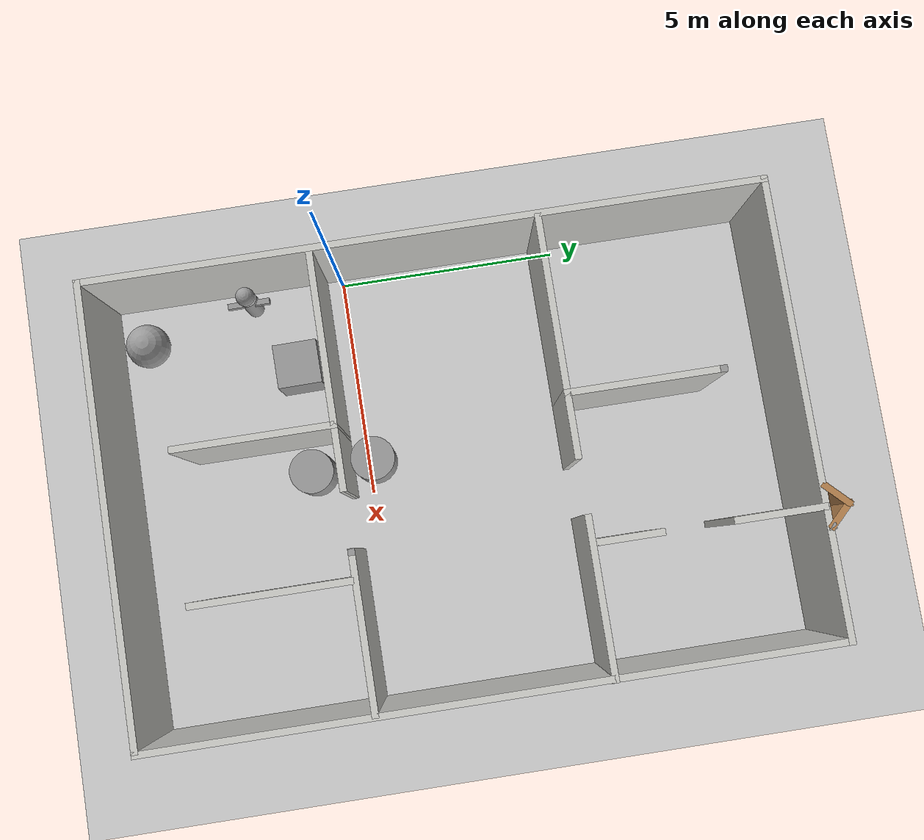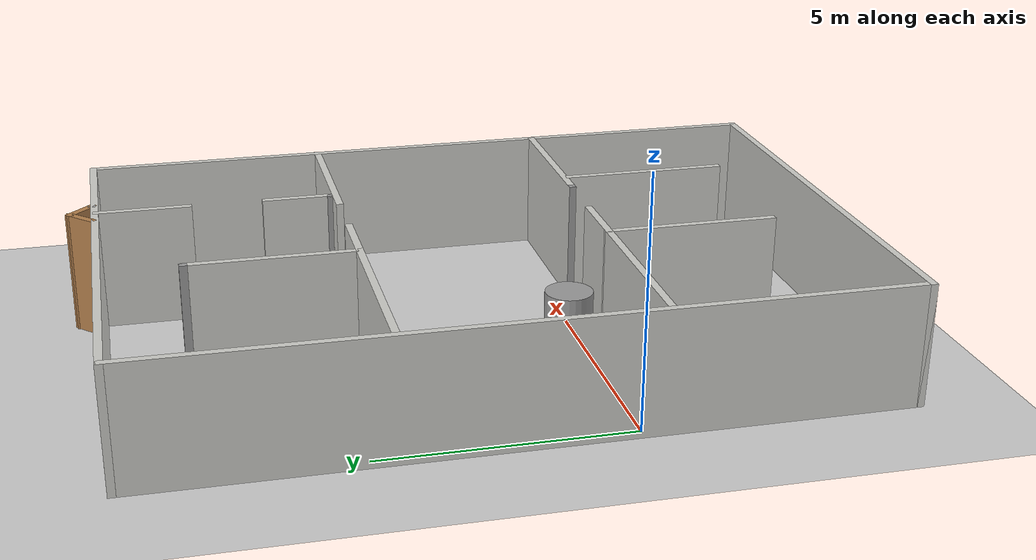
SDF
<sdf version="1.7">
 <world name="default">
  <model name="ground_plane">
   <static>1</static>
   <link name="link">
    <collision name="collision">
     <geometry><plane><normal>0 0 1</normal><size>100 100</size></plane></geometry>
     <surface><friction><ode><mu>100</mu><mu2>50</mu2></ode></friction></surface>
    </collision>
    <visual name="visual">
     <cast_shadows>0</cast_shadows>
     <geometry><plane><normal>0 0 1</normal><size>100 100</size></plane></geometry>
     <material>
      <script><uri>file://media/materials/scripts/gazebo.material</uri><name>Gazebo/Grey</name></script>
     </material>
    </visual>
   </link>
  </model>
  <model name="School">
   <link name="Wall_17">
    <pose>0.254991 -4.96898 0 0 -0 0</pose>
    <visual name="Wall_17_Visual">
     <pose>0 0 1.25 0 -0 0</pose>
     <geometry><box><size>15 0.15 2.5</size></box></geometry>
     <material>
      <script><uri>file://media/materials/scripts/gazebo.material</uri><name>Gazebo/CeilingTiled</name></script>
      <ambient>1 1 1 1</ambient>
      <shader type="pixel"/>
     </material>
     <meta><layer>0</layer></meta>
    </visual>
    <collision name="Wall_17_Collision">
     <pose>0 0 1.25 0 -0 0</pose>
     <geometry><box><size>15 0.15 2.5</size></box></geometry>
     <surface>
      <friction>
       <ode><mu>1</mu><mu2>1</mu2><fdir1>0 0 0</fdir1><slip1>0</slip1><slip2>0</slip2></ode>
       <torsional>
        <coefficient>1</coefficient>
        <patch_radius>0</patch_radius>
        <surface_radius>0</surface_radius>
        <use_patch_radius>1</use_patch_radius>
        <ode><slip>0</slip></ode>
       </torsional>
      </friction>
      <bounce><restitution_coefficient>0</restitution_coefficient><threshold>1e+06</threshold></bounce>
      <contact>
       <collide_without_contact>0</collide_without_contact>
       <collide_without_contact_bitmask>1</collide_without_contact_bitmask>
       <collide_bitmask>1</collide_bitmask>
       <ode>
        <soft_cfm>0</soft_cfm>
        <soft_erp>0.2</soft_erp>
        <kp>1e+13</kp>
        <kd>1</kd>
        <max_vel>0.01</max_vel>
        <min_depth>0</min_depth>
       </ode>
       <bullet>
        <split_impulse>1</split_impulse>
        <split_impulse_penetration_threshold>-0.01</split_impulse_penetration_threshold>
        <soft_cfm>0</soft_cfm>
        <soft_erp>0.2</soft_erp>
        <kp>1e+13</kp>
        <kd>1</kd>
       </bullet>
      </contact>
     </surface>
    </collision>
   </link>
   <link name="Wall_19">
    <pose>7.67999 -0.04398 0 0 -0 1.5708</pose>
    <visual name="Wall_19_Visual">
     <pose>0 0 1.25 0 -0 0</pose>
     <geometry><box><size>10 0.15 2.5</size></box></geometry>
     <material>
      <script><uri>file://media/materials/scripts/gazebo.material</uri><name>Gazebo/CeilingTiled</name></script>
      <ambient>1 1 1 1</ambient>
      <shader type="pixel"/>
     </material>
     <meta><layer>0</layer></meta>
    </visual>
    <collision name="Wall_19_Collision">
     <pose>0 0 1.25 0 -0 0</pose>
     <geometry><box><size>10 0.15 2.5</size></box></geometry>
     <surface>
      <friction>
       <ode><mu>1</mu><mu2>1</mu2><fdir1>0 0 0</fdir1><slip1>0</slip1><slip2>0</slip2></ode>
       <torsional>
        <coefficient>1</coefficient>
        <patch_radius>0</patch_radius>
        <surface_radius>0</surface_radius>
        <use_patch_radius>1</use_patch_radius>
        <ode><slip>0</slip></ode>
       </torsional>
      </friction>
      <bounce><restitution_coefficient>0</restitution_coefficient><threshold>1e+06</threshold></bounce>
      <contact>
       <collide_without_contact>0</collide_without_contact>
       <collide_without_contact_bitmask>1</collide_without_contact_bitmask>
       <collide_bitmask>1</collide_bitmask>
       <ode>
        <soft_cfm>0</soft_cfm>
        <soft_erp>0.2</soft_erp>
        <kp>1e+13</kp>
        <kd>1</kd>
        <max_vel>0.01</max_vel>
        <min_depth>0</min_depth>
       </ode>
       <bullet>
        <split_impulse>1</split_impulse>
        <split_impulse_penetration_threshold>-0.01</split_impulse_penetration_threshold>
        <soft_cfm>0</soft_cfm>
        <soft_erp>0.2</soft_erp>
        <kp>1e+13</kp>
        <kd>1</kd>
       </bullet>
      </contact>
     </surface>
    </collision>
   </link>
   <link name="Wall_21">
    <pose>2.71343 -2.97254 0 0 -0 1.56975</pose>
    <visual name="Wall_21_Visual">
     <pose>0 0 1.25 0 -0 0</pose>
     <geometry><box><size>3.84171 0.15 2.5</size></box></geometry>
     <material>
      <script><uri>file://media/materials/scripts/gazebo.material</uri><name>Gazebo/CeilingTiled</name></script>
      <ambient>1 1 1 1</ambient>
      <shader type="pixel"/>
     </material>
     <meta><layer>0</layer></meta>
    </visual>
    <collision name="Wall_21_Collision">
     <pose>0 0 1.25 0 -0 0</pose>
     <geometry><box><size>3.84171 0.15 2.5</size></box></geometry>
     <surface>
      <friction>
       <ode><mu>1</mu><mu2>1</mu2><fdir1>0 0 0</fdir1><slip1>0</slip1><slip2>0</slip2></ode>
       <torsional>
        <coefficient>1</coefficient>
        <patch_radius>0</patch_radius>
        <surface_radius>0</surface_radius>
        <use_patch_radius>1</use_patch_radius>
        <ode><slip>0</slip></ode>
       </torsional>
      </friction>
      <bounce><restitution_coefficient>0</restitution_coefficient><threshold>1e+06</threshold></bounce>
      <contact>
       <collide_without_contact>0</collide_without_contact>
       <collide_without_contact_bitmask>1</collide_without_contact_bitmask>
       <collide_bitmask>1</collide_bitmask>
       <ode>
        <soft_cfm>0</soft_cfm>
        <soft_erp>0.2</soft_erp>
        <kp>1e+13</kp>
        <kd>1</kd>
        <max_vel>0.01</max_vel>
        <min_depth>0</min_depth>
       </ode>
       <bullet>
        <split_impulse>1</split_impulse>
        <split_impulse_penetration_threshold>-0.01</split_impulse_penetration_threshold>
        <soft_cfm>0</soft_cfm>
        <soft_erp>0.2</soft_erp>
        <kp>1e+13</kp>
        <kd>1</kd>
       </bullet>
      </contact>
     </surface>
    </collision>
   </link>
   <link name="Wall_25">
    <pose>-7.17001 -0.00448 0 0 -0 1.5708</pose>
    <visual name="Wall_25_Visual">
     <pose>0 0 1.25 0 -0 0</pose>
     <geometry><box><size>10.0791 0.15 2.5</size></box></geometry>
     <material>
      <script><uri>file://media/materials/scripts/gazebo.material</uri><name>Gazebo/CeilingTiled</name></script>
      <ambient>1 1 1 1</ambient>
      <shader type="pixel"/>
     </material>
     <meta><layer>0</layer></meta>
    </visual>
    <collision name="Wall_25_Collision">
     <pose>0 0 1.25 0 -0 0</pose>
     <geometry><box><size>10.0791 0.15 2.5</size></box></geometry>
     <surface>
      <friction>
       <ode><mu>1</mu><mu2>1</mu2><fdir1>0 0 0</fdir1><slip1>0</slip1><slip2>0</slip2></ode>
       <torsional>
        <coefficient>1</coefficient>
        <patch_radius>0</patch_radius>
        <surface_radius>0</surface_radius>
        <use_patch_radius>1</use_patch_radius>
        <ode><slip>0</slip></ode>
       </torsional>
      </friction>
      <bounce><restitution_coefficient>0</restitution_coefficient><threshold>1e+06</threshold></bounce>
      <contact>
       <collide_without_contact>0</collide_without_contact>
       <collide_without_contact_bitmask>1</collide_without_contact_bitmask>
       <collide_bitmask>1</collide_bitmask>
       <ode>
        <soft_cfm>0</soft_cfm>
        <soft_erp>0.2</soft_erp>
        <kp>1e+13</kp>
        <kd>1</kd>
        <max_vel>0.01</max_vel>
        <min_depth>0</min_depth>
       </ode>
       <bullet>
        <split_impulse>1</split_impulse>
        <split_impulse_penetration_threshold>-0.01</split_impulse_penetration_threshold>
        <soft_cfm>0</soft_cfm>
        <soft_erp>0.2</soft_erp>
        <kp>1e+13</kp>
        <kd>1</kd>
       </bullet>
      </contact>
     </surface>
    </collision>
   </link>
   <link name="Wall_27">
    <pose>-2.23801 -2.96498 0 0 -0 1.5708</pose>
    <visual name="Wall_27_Visual">
     <pose>0 0 1.25 0 -0 0</pose>
     <geometry><box><size>4 0.15 2.5</size></box></geometry>
     <material>
      <script><uri>file://media/materials/scripts/gazebo.material</uri><name>Gazebo/CeilingTiled</name></script>
      <ambient>1 1 1 1</ambient>
      <shader type="pixel"/>
     </material>
     <meta><layer>0</layer></meta>
    </visual>
    <collision name="Wall_27_Collision">
     <pose>0 0 1.25 0 -0 0</pose>
     <geometry><box><size>4 0.15 2.5</size></box></geometry>
     <surface>
      <friction>
       <ode><mu>1</mu><mu2>1</mu2><fdir1>0 0 0</fdir1><slip1>0</slip1><slip2>0</slip2></ode>
       <torsional>
        <coefficient>1</coefficient>
        <patch_radius>0</patch_radius>
        <surface_radius>0</surface_radius>
        <use_patch_radius>1</use_patch_radius>
        <ode><slip>0</slip></ode>
       </torsional>
      </friction>
      <bounce><restitution_coefficient>0</restitution_coefficient><threshold>1e+06</threshold></bounce>
      <contact>
       <collide_without_contact>0</collide_without_contact>
       <collide_without_contact_bitmask>1</collide_without_contact_bitmask>
       <collide_bitmask>1</collide_bitmask>
       <ode>
        <soft_cfm>0</soft_cfm>
        <soft_erp>0.2</soft_erp>
        <kp>1e+13</kp>
        <kd>1</kd>
        <max_vel>0.01</max_vel>
        <min_depth>0</min_depth>
       </ode>
       <bullet>
        <split_impulse>1</split_impulse>
        <split_impulse_penetration_threshold>-0.01</split_impulse_penetration_threshold>
        <soft_cfm>0</soft_cfm>
        <soft_erp>0.2</soft_erp>
        <kp>1e+13</kp>
        <kd>1</kd>
       </bullet>
      </contact>
     </surface>
    </collision>
   </link>
   <link name="Wall_29">
    <pose>-3.91301 -1.03998 0 0 -0 3.14159</pose>
    <visual name="Wall_29_Visual">
     <pose>0 0 1.25 0 -0 0</pose>
     <geometry><box><size>3.5 0.15 2.5</size></box></geometry>
     <material>
      <script><uri>file://media/materials/scripts/gazebo.material</uri><name>Gazebo/CeilingTiled</name></script>
      <ambient>1 1 1 1</ambient>
      <shader type="pixel"/>
     </material>
     <meta><layer>0</layer></meta>
    </visual>
    <collision name="Wall_29_Collision">
     <pose>0 0 1.25 0 -0 0</pose>
     <geometry><box><size>3.5 0.15 2.5</size></box></geometry>
     <surface>
      <friction>
       <ode><mu>1</mu><mu2>1</mu2><fdir1>0 0 0</fdir1><slip1>0</slip1><slip2>0</slip2></ode>
       <torsional>
        <coefficient>1</coefficient>
        <patch_radius>0</patch_radius>
        <surface_radius>0</surface_radius>
        <use_patch_radius>1</use_patch_radius>
        <ode><slip>0</slip></ode>
       </torsional>
      </friction>
      <bounce><restitution_coefficient>0</restitution_coefficient><threshold>1e+06</threshold></bounce>
      <contact>
       <collide_without_contact>0</collide_without_contact>
       <collide_without_contact_bitmask>1</collide_without_contact_bitmask>
       <collide_bitmask>1</collide_bitmask>
       <ode>
        <soft_cfm>0</soft_cfm>
        <soft_erp>0.2</soft_erp>
        <kp>1e+13</kp>
        <kd>1</kd>
        <max_vel>0.01</max_vel>
        <min_depth>0</min_depth>
       </ode>
       <bullet>
        <split_impulse>1</split_impulse>
        <split_impulse_penetration_threshold>-0.01</split_impulse_penetration_threshold>
        <soft_cfm>0</soft_cfm>
        <soft_erp>0.2</soft_erp>
        <kp>1e+13</kp>
        <kd>1</kd>
       </bullet>
      </contact>
     </surface>
    </collision>
   </link>
   <link name="Wall_30">
    <pose>-5.58301 -1.03998 0 0 -0 0</pose>
    <visual name="Wall_30_Visual">
     <pose>0 0 1.25 0 -0 0</pose>
     <geometry><box><size>0.16 0.15 2.5</size></box></geometry>
     <material>
      <script><uri>file://media/materials/scripts/gazebo.material</uri><name>Gazebo/Grey</name></script>
      <ambient>1 1 1 1</ambient>
      <shader type="pixel"/>
     </material>
     <meta><layer>0</layer></meta>
    </visual>
    <collision name="Wall_30_Collision">
     <pose>0 0 1.25 0 -0 0</pose>
     <geometry><box><size>0.16 0.15 2.5</size></box></geometry>
     <surface>
      <friction>
       <ode><mu>1</mu><mu2>1</mu2><fdir1>0 0 0</fdir1><slip1>0</slip1><slip2>0</slip2></ode>
       <torsional>
        <coefficient>1</coefficient>
        <patch_radius>0</patch_radius>
        <surface_radius>0</surface_radius>
        <use_patch_radius>1</use_patch_radius>
        <ode><slip>0</slip></ode>
       </torsional>
      </friction>
      <bounce><restitution_coefficient>0</restitution_coefficient><threshold>1e+06</threshold></bounce>
      <contact>
       <collide_without_contact>0</collide_without_contact>
       <collide_without_contact_bitmask>1</collide_without_contact_bitmask>
       <collide_bitmask>1</collide_bitmask>
       <ode>
        <soft_cfm>0</soft_cfm>
        <soft_erp>0.2</soft_erp>
        <kp>1e+13</kp>
        <kd>1</kd>
        <max_vel>0.01</max_vel>
        <min_depth>0</min_depth>
       </ode>
       <bullet>
        <split_impulse>1</split_impulse>
        <split_impulse_penetration_threshold>-0.01</split_impulse_penetration_threshold>
        <soft_cfm>0</soft_cfm>
        <soft_erp>0.2</soft_erp>
        <kp>1e+13</kp>
        <kd>1</kd>
       </bullet>
      </contact>
     </surface>
    </collision>
   </link>
   <link name="Wall_32">
    <pose>4.42767 -1.12668 0 0 -0 0</pose>
    <visual name="Wall_32_Visual">
     <pose>0 0 1.25 0 -0 0</pose>
     <geometry><box><size>3.57462 0.15 2.5</size></box></geometry>
     <material>
      <script><uri>file://media/materials/scripts/gazebo.material</uri><name>Gazebo/CeilingTiled</name></script>
      <ambient>1 1 1 1</ambient>
      <shader type="pixel"/>
     </material>
     <meta><layer>0</layer></meta>
    </visual>
    <collision name="Wall_32_Collision">
     <pose>0 0 1.25 0 -0 0</pose>
     <geometry><box><size>3.57462 0.15 2.5</size></box></geometry>
     <surface>
      <friction>
       <ode><mu>1</mu><mu2>1</mu2><fdir1>0 0 0</fdir1><slip1>0</slip1><slip2>0</slip2></ode>
       <torsional>
        <coefficient>1</coefficient>
        <patch_radius>0</patch_radius>
        <surface_radius>0</surface_radius>
        <use_patch_radius>1</use_patch_radius>
        <ode><slip>0</slip></ode>
       </torsional>
      </friction>
      <bounce><restitution_coefficient>0</restitution_coefficient><threshold>1e+06</threshold></bounce>
      <contact>
       <collide_without_contact>0</collide_without_contact>
       <collide_without_contact_bitmask>1</collide_without_contact_bitmask>
       <collide_bitmask>1</collide_bitmask>
       <ode>
        <soft_cfm>0</soft_cfm>
        <soft_erp>0.2</soft_erp>
        <kp>1e+13</kp>
        <kd>1</kd>
        <max_vel>0.01</max_vel>
        <min_depth>0</min_depth>
       </ode>
       <bullet>
        <split_impulse>1</split_impulse>
        <split_impulse_penetration_threshold>-0.01</split_impulse_penetration_threshold>
        <soft_cfm>0</soft_cfm>
        <soft_erp>0.2</soft_erp>
        <kp>1e+13</kp>
        <kd>1</kd>
       </bullet>
      </contact>
     </surface>
    </collision>
   </link>
   <link name="Wall_36">
    <pose>0.254991 4.95997 0 0 0 -7e-06</pose>
    <visual name="Wall_36_Visual">
     <pose>0 0 1.25 0 -0 0</pose>
     <geometry><box><size>15 0.15 2.5</size></box></geometry>
     <material>
      <script><uri>file://media/materials/scripts/gazebo.material</uri><name>Gazebo/CeilingTiled</name></script>
      <ambient>1 1 1 1</ambient>
      <shader type="pixel"/>
     </material>
     <meta><layer>0</layer></meta>
    </visual>
    <collision name="Wall_36_Collision">
     <pose>0 0 1.25 0 -0 0</pose>
     <geometry><box><size>15 0.15 2.5</size></box></geometry>
     <surface>
      <friction>
       <ode><mu>1</mu><mu2>1</mu2><fdir1>0 0 0</fdir1><slip1>0</slip1><slip2>0</slip2></ode>
       <torsional>
        <coefficient>1</coefficient>
        <patch_radius>0</patch_radius>
        <surface_radius>0</surface_radius>
        <use_patch_radius>1</use_patch_radius>
        <ode><slip>0</slip></ode>
       </torsional>
      </friction>
      <bounce><restitution_coefficient>0</restitution_coefficient><threshold>1e+06</threshold></bounce>
      <contact>
       <collide_without_contact>0</collide_without_contact>
       <collide_without_contact_bitmask>1</collide_without_contact_bitmask>
       <collide_bitmask>1</collide_bitmask>
       <ode>
        <soft_cfm>0</soft_cfm>
        <soft_erp>0.2</soft_erp>
        <kp>1e+13</kp>
        <kd>1</kd>
        <max_vel>0.01</max_vel>
        <min_depth>0</min_depth>
       </ode>
       <bullet>
        <split_impulse>1</split_impulse>
        <split_impulse_penetration_threshold>-0.01</split_impulse_penetration_threshold>
        <soft_cfm>0</soft_cfm>
        <soft_erp>0.2</soft_erp>
        <kp>1e+13</kp>
        <kd>1</kd>
       </bullet>
      </contact>
     </surface>
    </collision>
   </link>
   <link name="Wall_39">
    <pose>-2.23801 -0.36498 0 0 -0 1.5708</pose>
    <visual name="Wall_39_Visual">
     <pose>0 0 1.25 0 -0 0</pose>
     <geometry><box><size>1.5 0.15 2.5</size></box></geometry>
     <material>
      <script><uri>file://media/materials/scripts/gazebo.material</uri><name>Gazebo/CeilingTiled</name></script>
      <ambient>1 1 1 1</ambient>
      <shader type="pixel"/>
     </material>
     <meta><layer>0</layer></meta>
    </visual>
    <collision name="Wall_39_Collision">
     <pose>0 0 1.25 0 -0 0</pose>
     <geometry><box><size>1.5 0.15 2.5</size></box></geometry>
     <surface>
      <friction>
       <ode><mu>1</mu><mu2>1</mu2><fdir1>0 0 0</fdir1><slip1>0</slip1><slip2>0</slip2></ode>
       <torsional>
        <coefficient>1</coefficient>
        <patch_radius>0</patch_radius>
        <surface_radius>0</surface_radius>
        <use_patch_radius>1</use_patch_radius>
        <ode><slip>0</slip></ode>
       </torsional>
      </friction>
      <bounce><restitution_coefficient>0</restitution_coefficient><threshold>1e+06</threshold></bounce>
      <contact>
       <collide_without_contact>0</collide_without_contact>
       <collide_without_contact_bitmask>1</collide_without_contact_bitmask>
       <collide_bitmask>1</collide_bitmask>
       <ode>
        <soft_cfm>0</soft_cfm>
        <soft_erp>0.2</soft_erp>
        <kp>1e+13</kp>
        <kd>1</kd>
        <max_vel>0.01</max_vel>
        <min_depth>0</min_depth>
       </ode>
       <bullet>
        <split_impulse>1</split_impulse>
        <split_impulse_penetration_threshold>-0.01</split_impulse_penetration_threshold>
        <soft_cfm>0</soft_cfm>
        <soft_erp>0.2</soft_erp>
        <kp>1e+13</kp>
        <kd>1</kd>
       </bullet>
      </contact>
     </surface>
    </collision>
   </link>
   <link name="Wall_41">
    <pose>-2.23801 3.29402 0 0 0 -1.5708</pose>
    <visual name="Wall_41_Visual">
     <pose>0 0 1.25 0 -0 0</pose>
     <geometry><box><size>3.5 0.15 2.5</size></box></geometry>
     <material>
      <script><uri>file://media/materials/scripts/gazebo.material</uri><name>Gazebo/CeilingTiled</name></script>
      <ambient>1 1 1 1</ambient>
      <shader type="pixel"/>
     </material>
     <meta><layer>0</layer></meta>
    </visual>
    <collision name="Wall_41_Collision">
     <pose>0 0 1.25 0 -0 0</pose>
     <geometry><box><size>3.5 0.15 2.5</size></box></geometry>
     <surface>
      <friction>
       <ode><mu>1</mu><mu2>1</mu2><fdir1>0 0 0</fdir1><slip1>0</slip1><slip2>0</slip2></ode>
       <torsional>
        <coefficient>1</coefficient>
        <patch_radius>0</patch_radius>
        <surface_radius>0</surface_radius>
        <use_patch_radius>1</use_patch_radius>
        <ode><slip>0</slip></ode>
       </torsional>
      </friction>
      <bounce><restitution_coefficient>0</restitution_coefficient><threshold>1e+06</threshold></bounce>
      <contact>
       <collide_without_contact>0</collide_without_contact>
       <collide_without_contact_bitmask>1</collide_without_contact_bitmask>
       <collide_bitmask>1</collide_bitmask>
       <ode>
        <soft_cfm>0</soft_cfm>
        <soft_erp>0.2</soft_erp>
        <kp>1e+13</kp>
        <kd>1</kd>
        <max_vel>0.01</max_vel>
        <min_depth>0</min_depth>
       </ode>
       <bullet>
        <split_impulse>1</split_impulse>
        <split_impulse_penetration_threshold>-0.01</split_impulse_penetration_threshold>
        <soft_cfm>0</soft_cfm>
        <soft_erp>0.2</soft_erp>
        <kp>1e+13</kp>
        <kd>1</kd>
       </bullet>
      </contact>
     </surface>
    </collision>
   </link>
   <link name="Wall_46">
    <pose>2.73299 3.23402 0 0 0 -1.5708</pose>
    <visual name="Wall_46_Visual">
     <pose>0 0 1.25 0 -0 0</pose>
     <geometry><box><size>3.5 0.15 2.5</size></box></geometry>
     <material>
      <script><uri>file://media/materials/scripts/gazebo.material</uri><name>Gazebo/CeilingTiled</name></script>
      <ambient>1 1 1 1</ambient>
      <shader type="pixel"/>
     </material>
     <meta><layer>0</layer></meta>
    </visual>
    <collision name="Wall_46_Collision">
     <pose>0 0 1.25 0 -0 0</pose>
     <geometry><box><size>3.5 0.15 2.5</size></box></geometry>
     <surface>
      <friction>
       <ode><mu>1</mu><mu2>1</mu2><fdir1>0 0 0</fdir1><slip1>0</slip1><slip2>0</slip2></ode>
       <torsional>
        <coefficient>1</coefficient>
        <patch_radius>0</patch_radius>
        <surface_radius>0</surface_radius>
        <use_patch_radius>1</use_patch_radius>
        <ode><slip>0</slip></ode>
       </torsional>
      </friction>
      <bounce><restitution_coefficient>0</restitution_coefficient><threshold>1e+06</threshold></bounce>
      <contact>
       <collide_without_contact>0</collide_without_contact>
       <collide_without_contact_bitmask>1</collide_without_contact_bitmask>
       <collide_bitmask>1</collide_bitmask>
       <ode>
        <soft_cfm>0</soft_cfm>
        <soft_erp>0.2</soft_erp>
        <kp>1e+13</kp>
        <kd>1</kd>
        <max_vel>0.01</max_vel>
        <min_depth>0</min_depth>
       </ode>
       <bullet>
        <split_impulse>1</split_impulse>
        <split_impulse_penetration_threshold>-0.01</split_impulse_penetration_threshold>
        <soft_cfm>0</soft_cfm>
        <soft_erp>0.2</soft_erp>
        <kp>1e+13</kp>
        <kd>1</kd>
       </bullet>
      </contact>
     </surface>
    </collision>
   </link>
   <link name="Wall_47">
    <pose>2.73299 1.55902 0 0 -0 0</pose>
    <visual name="Wall_47_Visual">
     <pose>0 0 1.25 0 -0 0</pose>
     <geometry><box><size>0.15 0.15 2.5</size></box></geometry>
     <material>
      <script><uri>file://media/materials/scripts/gazebo.material</uri><name>Gazebo/Grey</name></script>
      <ambient>1 1 1 1</ambient>
      <shader type="pixel"/>
     </material>
     <meta><layer>0</layer></meta>
    </visual>
    <collision name="Wall_47_Collision">
     <pose>0 0 1.25 0 -0 0</pose>
     <geometry><box><size>0.15 0.15 2.5</size></box></geometry>
     <surface>
      <friction>
       <ode><mu>1</mu><mu2>1</mu2><fdir1>0 0 0</fdir1><slip1>0</slip1><slip2>0</slip2></ode>
       <torsional>
        <coefficient>1</coefficient>
        <patch_radius>0</patch_radius>
        <surface_radius>0</surface_radius>
        <use_patch_radius>1</use_patch_radius>
        <ode><slip>0</slip></ode>
       </torsional>
      </friction>
      <bounce><restitution_coefficient>0</restitution_coefficient><threshold>1e+06</threshold></bounce>
      <contact>
       <collide_without_contact>0</collide_without_contact>
       <collide_without_contact_bitmask>1</collide_without_contact_bitmask>
       <collide_bitmask>1</collide_bitmask>
       <ode>
        <soft_cfm>0</soft_cfm>
        <soft_erp>0.2</soft_erp>
        <kp>1e+13</kp>
        <kd>1</kd>
        <max_vel>0.01</max_vel>
        <min_depth>0</min_depth>
       </ode>
       <bullet>
        <split_impulse>1</split_impulse>
        <split_impulse_penetration_threshold>-0.01</split_impulse_penetration_threshold>
        <soft_cfm>0</soft_cfm>
        <soft_erp>0.2</soft_erp>
        <kp>1e+13</kp>
        <kd>1</kd>
       </bullet>
      </contact>
     </surface>
    </collision>
   </link>
   <link name="Wall_49">
    <pose>2.71536 -0.45168 0 0 -0 1.5708</pose>
    <visual name="Wall_49_Visual">
     <pose>0 0 1.25 0 -0 0</pose>
     <geometry><box><size>1.5 0.15 2.5</size></box></geometry>
     <material>
      <script><uri>file://media/materials/scripts/gazebo.material</uri><name>Gazebo/CeilingTiled</name></script>
      <ambient>1 1 1 1</ambient>
      <shader type="pixel"/>
     </material>
     <meta><layer>0</layer></meta>
    </visual>
    <collision name="Wall_49_Collision">
     <pose>0 0 1.25 0 -0 0</pose>
     <geometry><box><size>1.5 0.15 2.5</size></box></geometry>
     <surface>
      <friction>
       <ode><mu>1</mu><mu2>1</mu2><fdir1>0 0 0</fdir1><slip1>0</slip1><slip2>0</slip2></ode>
       <torsional>
        <coefficient>1</coefficient>
        <patch_radius>0</patch_radius>
        <surface_radius>0</surface_radius>
        <use_patch_radius>1</use_patch_radius>
        <ode><slip>0</slip></ode>
       </torsional>
      </friction>
      <bounce><restitution_coefficient>0</restitution_coefficient><threshold>1e+06</threshold></bounce>
      <contact>
       <collide_without_contact>0</collide_without_contact>
       <collide_without_contact_bitmask>1</collide_without_contact_bitmask>
       <collide_bitmask>1</collide_bitmask>
       <ode>
        <soft_cfm>0</soft_cfm>
        <soft_erp>0.2</soft_erp>
        <kp>1e+13</kp>
        <kd>1</kd>
        <max_vel>0.01</max_vel>
        <min_depth>0</min_depth>
       </ode>
       <bullet>
        <split_impulse>1</split_impulse>
        <split_impulse_penetration_threshold>-0.01</split_impulse_penetration_threshold>
        <soft_cfm>0</soft_cfm>
        <soft_erp>0.2</soft_erp>
        <kp>1e+13</kp>
        <kd>1</kd>
       </bullet>
      </contact>
     </surface>
    </collision>
   </link>
   <link name="Wall_50">
    <pose>2.71536 0.22332 0 0 -0 0</pose>
    <visual name="Wall_50_Visual">
     <pose>0 0 1.25 0 -0 0</pose>
     <geometry><box><size>0.15 0.15 2.5</size></box></geometry>
     <material>
      <script><uri>file://media/materials/scripts/gazebo.material</uri><name>Gazebo/CeilingTiled</name></script>
      <ambient>1 1 1 1</ambient>
      <shader type="pixel"/>
     </material>
     <meta><layer>0</layer></meta>
    </visual>
    <collision name="Wall_50_Collision">
     <pose>0 0 1.25 0 -0 0</pose>
     <geometry><box><size>0.15 0.15 2.5</size></box></geometry>
     <surface>
      <friction>
       <ode><mu>1</mu><mu2>1</mu2><fdir1>0 0 0</fdir1><slip1>0</slip1><slip2>0</slip2></ode>
       <torsional>
        <coefficient>1</coefficient>
        <patch_radius>0</patch_radius>
        <surface_radius>0</surface_radius>
        <use_patch_radius>1</use_patch_radius>
        <ode><slip>0</slip></ode>
       </torsional>
      </friction>
      <bounce><restitution_coefficient>0</restitution_coefficient><threshold>1e+06</threshold></bounce>
      <contact>
       <collide_without_contact>0</collide_without_contact>
       <collide_without_contact_bitmask>1</collide_without_contact_bitmask>
       <collide_bitmask>1</collide_bitmask>
       <ode>
        <soft_cfm>0</soft_cfm>
        <soft_erp>0.2</soft_erp>
        <kp>1e+13</kp>
        <kd>1</kd>
        <max_vel>0.01</max_vel>
        <min_depth>0</min_depth>
       </ode>
       <bullet>
        <split_impulse>1</split_impulse>
        <split_impulse_penetration_threshold>-0.01</split_impulse_penetration_threshold>
        <soft_cfm>0</soft_cfm>
        <soft_erp>0.2</soft_erp>
        <kp>1e+13</kp>
        <kd>1</kd>
       </bullet>
      </contact>
     </surface>
    </collision>
   </link>
   <link name="Wall_53">
    <pose>-7.64893 2.15204 0 0 -0 0</pose>
    <visual name="Wall_53_Visual">
     <pose>0 0 1.25 0 -0 0</pose>
     <geometry><box><size>0.15 0.15 2.5</size></box></geometry>
     <material>
      <script><uri>file://media/materials/scripts/gazebo.material</uri><name>Gazebo/Wood</name></script>
      <ambient>1 1 1 1</ambient>
      <shader type="pixel"/>
     </material>
     <meta><layer>0</layer></meta>
    </visual>
    <collision name="Wall_53_Collision">
     <pose>0 0 1.25 0 -0 0</pose>
     <geometry><box><size>0.15 0.15 2.5</size></box></geometry>
     <surface>
      <friction>
       <ode><mu>1</mu><mu2>1</mu2><fdir1>0 0 0</fdir1><slip1>0</slip1><slip2>0</slip2></ode>
       <torsional>
        <coefficient>1</coefficient>
        <patch_radius>0</patch_radius>
        <surface_radius>0</surface_radius>
        <use_patch_radius>1</use_patch_radius>
        <ode><slip>0</slip></ode>
       </torsional>
      </friction>
      <bounce><restitution_coefficient>0</restitution_coefficient><threshold>1e+06</threshold></bounce>
      <contact>
       <collide_without_contact>0</collide_without_contact>
       <collide_without_contact_bitmask>1</collide_without_contact_bitmask>
       <collide_bitmask>1</collide_bitmask>
       <ode>
        <soft_cfm>0</soft_cfm>
        <soft_erp>0.2</soft_erp>
        <kp>1e+13</kp>
        <kd>1</kd>
        <max_vel>0.01</max_vel>
        <min_depth>0</min_depth>
       </ode>
       <bullet>
        <split_impulse>1</split_impulse>
        <split_impulse_penetration_threshold>-0.01</split_impulse_penetration_threshold>
        <soft_cfm>0</soft_cfm>
        <soft_erp>0.2</soft_erp>
        <kp>1e+13</kp>
        <kd>1</kd>
       </bullet>
      </contact>
     </surface>
    </collision>
   </link>
   <link name="Wall_55">
    <pose>-6.21671 2.15116 0 0 -0 0</pose>
    <visual name="Wall_55_Visual">
     <pose>0 0 1.25 0 -0 0</pose>
     <geometry><box><size>2 0.15 2.5</size></box></geometry>
     <material>
      <script><uri>file://media/materials/scripts/gazebo.material</uri><name>Gazebo/CeilingTiled</name></script>
      <ambient>1 1 1 1</ambient>
      <shader type="pixel"/>
     </material>
     <meta><layer>0</layer></meta>
    </visual>
    <collision name="Wall_55_Collision">
     <pose>0 0 1.25 0 -0 0</pose>
     <geometry><box><size>2 0.15 2.5</size></box></geometry>
     <surface>
      <friction>
       <ode><mu>1</mu><mu2>1</mu2><fdir1>0 0 0</fdir1><slip1>0</slip1><slip2>0</slip2></ode>
       <torsional>
        <coefficient>1</coefficient>
        <patch_radius>0</patch_radius>
        <surface_radius>0</surface_radius>
        <use_patch_radius>1</use_patch_radius>
        <ode><slip>0</slip></ode>
       </torsional>
      </friction>
      <bounce><restitution_coefficient>0</restitution_coefficient><threshold>1e+06</threshold></bounce>
      <contact>
       <collide_without_contact>0</collide_without_contact>
       <collide_without_contact_bitmask>1</collide_without_contact_bitmask>
       <collide_bitmask>1</collide_bitmask>
       <ode>
        <soft_cfm>0</soft_cfm>
        <soft_erp>0.2</soft_erp>
        <kp>1e+13</kp>
        <kd>1</kd>
        <max_vel>0.01</max_vel>
        <min_depth>0</min_depth>
       </ode>
       <bullet>
        <split_impulse>1</split_impulse>
        <split_impulse_penetration_threshold>-0.01</split_impulse_penetration_threshold>
        <soft_cfm>0</soft_cfm>
        <soft_erp>0.2</soft_erp>
        <kp>1e+13</kp>
        <kd>1</kd>
       </bullet>
      </contact>
     </surface>
    </collision>
   </link>
   <link name="Wall_57">
    <pose>-3.02201 2.15102 0 0 -0 0</pose>
    <visual name="Wall_57_Visual">
     <pose>0 0 1.25 0 -0 0</pose>
     <geometry><box><size>1.5 0.15 2.5</size></box></geometry>
     <material>
      <script><uri>file://media/materials/scripts/gazebo.material</uri><name>Gazebo/CeilingTiled</name></script>
      <ambient>1 1 1 1</ambient>
      <shader type="pixel"/>
     </material>
     <meta><layer>0</layer></meta>
    </visual>
    <collision name="Wall_57_Collision">
     <pose>0 0 1.25 0 -0 0</pose>
     <geometry><box><size>1.5 0.15 2.5</size></box></geometry>
     <surface>
      <friction>
       <ode><mu>1</mu><mu2>1</mu2><fdir1>0 0 0</fdir1><slip1>0</slip1><slip2>0</slip2></ode>
       <torsional>
        <coefficient>1</coefficient>
        <patch_radius>0</patch_radius>
        <surface_radius>0</surface_radius>
        <use_patch_radius>1</use_patch_radius>
        <ode><slip>0</slip></ode>
       </torsional>
      </friction>
      <bounce><restitution_coefficient>0</restitution_coefficient><threshold>1e+06</threshold></bounce>
      <contact>
       <collide_without_contact>0</collide_without_contact>
       <collide_without_contact_bitmask>1</collide_without_contact_bitmask>
       <collide_bitmask>1</collide_bitmask>
       <ode>
        <soft_cfm>0</soft_cfm>
        <soft_erp>0.2</soft_erp>
        <kp>1e+13</kp>
        <kd>1</kd>
        <max_vel>0.01</max_vel>
        <min_depth>0</min_depth>
       </ode>
       <bullet>
        <split_impulse>1</split_impulse>
        <split_impulse_penetration_threshold>-0.01</split_impulse_penetration_threshold>
        <soft_cfm>0</soft_cfm>
        <soft_erp>0.2</soft_erp>
        <kp>1e+13</kp>
        <kd>1</kd>
       </bullet>
      </contact>
     </surface>
    </collision>
   </link>
   <link name="Wall_58">
    <pose>-2.34701 2.15102 0 0 -0 0</pose>
    <visual name="Wall_58_Visual">
     <pose>0 0 1.25 0 -0 0</pose>
     <geometry><box><size>0.15 0.15 2.5</size></box></geometry>
     <material>
      <script><uri>file://media/materials/scripts/gazebo.material</uri><name>Gazebo/Grey</name></script>
      <ambient>1 1 1 1</ambient>
      <shader type="pixel"/>
     </material>
     <meta><layer>0</layer></meta>
    </visual>
    <collision name="Wall_58_Collision">
     <pose>0 0 1.25 0 -0 0</pose>
     <geometry><box><size>0.15 0.15 2.5</size></box></geometry>
     <surface>
      <friction>
       <ode><mu>1</mu><mu2>1</mu2><fdir1>0 0 0</fdir1><slip1>0</slip1><slip2>0</slip2></ode>
       <torsional>
        <coefficient>1</coefficient>
        <patch_radius>0</patch_radius>
        <surface_radius>0</surface_radius>
        <use_patch_radius>1</use_patch_radius>
        <ode><slip>0</slip></ode>
       </torsional>
      </friction>
      <bounce><restitution_coefficient>0</restitution_coefficient><threshold>1e+06</threshold></bounce>
      <contact>
       <collide_without_contact>0</collide_without_contact>
       <collide_without_contact_bitmask>1</collide_without_contact_bitmask>
       <collide_bitmask>1</collide_bitmask>
       <ode>
        <soft_cfm>0</soft_cfm>
        <soft_erp>0.2</soft_erp>
        <kp>1e+13</kp>
        <kd>1</kd>
        <max_vel>0.01</max_vel>
        <min_depth>0</min_depth>
       </ode>
       <bullet>
        <split_impulse>1</split_impulse>
        <split_impulse_penetration_threshold>-0.01</split_impulse_penetration_threshold>
        <soft_cfm>0</soft_cfm>
        <soft_erp>0.2</soft_erp>
        <kp>1e+13</kp>
        <kd>1</kd>
       </bullet>
      </contact>
     </surface>
    </collision>
   </link>
   <link name="Wall_61">
    <pose>4.51973 2.15102 0 0 -0 0</pose>
    <visual name="Wall_61_Visual">
     <pose>0 0 1.25 0 -0 0</pose>
     <geometry><box><size>3.5 0.15 2.5</size></box></geometry>
     <material>
      <script><uri>file://media/materials/scripts/gazebo.material</uri><name>Gazebo/CeilingTiled</name></script>
      <ambient>1 1 1 1</ambient>
      <shader type="pixel"/>
     </material>
     <meta><layer>0</layer></meta>
    </visual>
    <collision name="Wall_61_Collision">
     <pose>0 0 1.25 0 -0 0</pose>
     <geometry><box><size>3.5 0.15 2.5</size></box></geometry>
     <surface>
      <friction>
       <ode><mu>1</mu><mu2>1</mu2><fdir1>0 0 0</fdir1><slip1>0</slip1><slip2>0</slip2></ode>
       <torsional>
        <coefficient>1</coefficient>
        <patch_radius>0</patch_radius>
        <surface_radius>0</surface_radius>
        <use_patch_radius>1</use_patch_radius>
        <ode><slip>0</slip></ode>
       </torsional>
      </friction>
      <bounce><restitution_coefficient>0</restitution_coefficient><threshold>1e+06</threshold></bounce>
      <contact>
       <collide_without_contact>0</collide_without_contact>
       <collide_without_contact_bitmask>1</collide_without_contact_bitmask>
       <collide_bitmask>1</collide_bitmask>
       <ode>
        <soft_cfm>0</soft_cfm>
        <soft_erp>0.2</soft_erp>
        <kp>1e+13</kp>
        <kd>1</kd>
        <max_vel>0.01</max_vel>
        <min_depth>0</min_depth>
       </ode>
       <bullet>
        <split_impulse>1</split_impulse>
        <split_impulse_penetration_threshold>-0.01</split_impulse_penetration_threshold>
        <soft_cfm>0</soft_cfm>
        <soft_erp>0.2</soft_erp>
        <kp>1e+13</kp>
        <kd>1</kd>
       </bullet>
      </contact>
     </surface>
    </collision>
   </link>
   <link name="Wall_87">
    <pose>-7.43679 2.36417 0 0 -0 0.785398</pose>
    <visual name="Wall_87_Visual">
     <pose>0 0 1.25 0 -0 0</pose>
     <geometry><box><size>0.75 0.15 2.5</size></box></geometry>
     <material>
      <script><uri>file://media/materials/scripts/gazebo.material</uri><name>Gazebo/Wood</name></script>
      <ambient>1 1 1 1</ambient>
      <shader type="pixel"/>
     </material>
     <meta><layer>0</layer></meta>
    </visual>
    <collision name="Wall_87_Collision">
     <pose>0 0 1.25 0 -0 0</pose>
     <geometry><box><size>0.75 0.15 2.5</size></box></geometry>
     <surface>
      <friction>
       <ode><mu>1</mu><mu2>1</mu2><fdir1>0 0 0</fdir1><slip1>0</slip1><slip2>0</slip2></ode>
       <torsional>
        <coefficient>1</coefficient>
        <patch_radius>0</patch_radius>
        <surface_radius>0</surface_radius>
        <use_patch_radius>1</use_patch_radius>
        <ode><slip>0</slip></ode>
       </torsional>
      </friction>
      <bounce><restitution_coefficient>0</restitution_coefficient><threshold>1e+06</threshold></bounce>
      <contact>
       <collide_without_contact>0</collide_without_contact>
       <collide_without_contact_bitmask>1</collide_without_contact_bitmask>
       <collide_bitmask>1</collide_bitmask>
       <ode>
        <soft_cfm>0</soft_cfm>
        <soft_erp>0.2</soft_erp>
        <kp>1e+13</kp>
        <kd>1</kd>
        <max_vel>0.01</max_vel>
        <min_depth>0</min_depth>
       </ode>
       <bullet>
        <split_impulse>1</split_impulse>
        <split_impulse_penetration_threshold>-0.01</split_impulse_penetration_threshold>
        <soft_cfm>0</soft_cfm>
        <soft_erp>0.2</soft_erp>
        <kp>1e+13</kp>
        <kd>1</kd>
       </bullet>
      </contact>
     </surface>
    </collision>
   </link>
   <link name="Wall_88">
    <pose>-7.21966 2.5763 0 0 -0 0</pose>
    <visual name="Wall_88_Visual">
     <pose>0 0 1.25 0 -0 0</pose>
     <geometry><box><size>0.16 0.15 2.5</size></box></geometry>
     <material>
      <script><uri>file://media/materials/scripts/gazebo.material</uri><name>Gazebo/Grey</name></script>
      <ambient>1 1 1 1</ambient>
      <shader type="pixel"/>
     </material>
     <meta><layer>0</layer></meta>
    </visual>
    <collision name="Wall_88_Collision">
     <pose>0 0 1.25 0 -0 0</pose>
     <geometry><box><size>0.16 0.15 2.5</size></box></geometry>
     <surface>
      <friction>
       <ode><mu>1</mu><mu2>1</mu2><fdir1>0 0 0</fdir1><slip1>0</slip1><slip2>0</slip2></ode>
       <torsional>
        <coefficient>1</coefficient>
        <patch_radius>0</patch_radius>
        <surface_radius>0</surface_radius>
        <use_patch_radius>1</use_patch_radius>
        <ode><slip>0</slip></ode>
       </torsional>
      </friction>
      <bounce><restitution_coefficient>0</restitution_coefficient><threshold>1e+06</threshold></bounce>
      <contact>
       <collide_without_contact>0</collide_without_contact>
       <collide_without_contact_bitmask>1</collide_without_contact_bitmask>
       <collide_bitmask>1</collide_bitmask>
       <ode>
        <soft_cfm>0</soft_cfm>
        <soft_erp>0.2</soft_erp>
        <kp>1e+13</kp>
        <kd>1</kd>
        <max_vel>0.01</max_vel>
        <min_depth>0</min_depth>
       </ode>
       <bullet>
        <split_impulse>1</split_impulse>
        <split_impulse_penetration_threshold>-0.01</split_impulse_penetration_threshold>
        <soft_cfm>0</soft_cfm>
        <soft_erp>0.2</soft_erp>
        <kp>1e+13</kp>
        <kd>1</kd>
       </bullet>
      </contact>
     </surface>
    </collision>
   </link>
   <link name="Wall_90">
    <pose>-7.43679 1.9399 0 0 0 -0.785398</pose>
    <visual name="Wall_90_Visual">
     <pose>0 0 1.25 0 -0 0</pose>
     <geometry><box><size>0.75 0.15 2.5</size></box></geometry>
     <material>
      <script><uri>file://media/materials/scripts/gazebo.material</uri><name>Gazebo/Wood</name></script>
      <ambient>1 1 1 1</ambient>
      <shader type="pixel"/>
     </material>
     <meta><layer>0</layer></meta>
    </visual>
    <collision name="Wall_90_Collision">
     <pose>0 0 1.25 0 -0 0</pose>
     <geometry><box><size>0.75 0.15 2.5</size></box></geometry>
     <surface>
      <friction>
       <ode><mu>1</mu><mu2>1</mu2><fdir1>0 0 0</fdir1><slip1>0</slip1><slip2>0</slip2></ode>
       <torsional>
        <coefficient>1</coefficient>
        <patch_radius>0</patch_radius>
        <surface_radius>0</surface_radius>
        <use_patch_radius>1</use_patch_radius>
        <ode><slip>0</slip></ode>
       </torsional>
      </friction>
      <bounce><restitution_coefficient>0</restitution_coefficient><threshold>1e+06</threshold></bounce>
      <contact>
       <collide_without_contact>0</collide_without_contact>
       <collide_without_contact_bitmask>1</collide_without_contact_bitmask>
       <collide_bitmask>1</collide_bitmask>
       <ode>
        <soft_cfm>0</soft_cfm>
        <soft_erp>0.2</soft_erp>
        <kp>1e+13</kp>
        <kd>1</kd>
        <max_vel>0.01</max_vel>
        <min_depth>0</min_depth>
       </ode>
       <bullet>
        <split_impulse>1</split_impulse>
        <split_impulse_penetration_threshold>-0.01</split_impulse_penetration_threshold>
        <soft_cfm>0</soft_cfm>
        <soft_erp>0.2</soft_erp>
        <kp>1e+13</kp>
        <kd>1</kd>
       </bullet>
      </contact>
     </surface>
    </collision>
   </link>
   <static>1</static>
   <pose>4.77504 2.28545 0.017813 0 0 -1.57</pose>
  </model>
  <model name="human_0">
   <link name="link_0">
    <inertial>
     <mass>0.142839</mass>
     <inertia>
      <ixx>0.0121475</ixx>
      <ixy>0</ixy>
      <ixz>0</ixz>
      <iyy>0.0121475</iyy>
      <iyz>0</iyz>
      <izz>0.00267643</izz>
     </inertia>
    </inertial>
    <pose>0.008516 0.031929 -0.329122 0 -0 0</pose>
    <visual name="visual">
     <geometry><cylinder><radius>0.193584</radius><length>0.95294</length></cylinder></geometry>
     <material>
      <lighting>1</lighting>
      <script><uri>file://media/materials/scripts/gazebo.material</uri><name>Gazebo/Grey</name></script>
      <shader type="pixel"/>
     </material>
    </visual>
    <collision name="collision">
     <geometry><cylinder><radius>0.193584</radius><length>0.95294</length></cylinder></geometry>
     <surface>
      <friction>
       <ode><mu>1</mu><mu2>1</mu2><fdir1>0 0 0</fdir1><slip1>0</slip1><slip2>0</slip2></ode>
       <torsional>
        <coefficient>1</coefficient>
        <patch_radius>0</patch_radius>
        <surface_radius>0</surface_radius>
        <use_patch_radius>1</use_patch_radius>
        <ode><slip>0</slip></ode>
       </torsional>
      </friction>
      <bounce><restitution_coefficient>0</restitution_coefficient><threshold>1e+06</threshold></bounce>
      <contact>
       <collide_without_contact>0</collide_without_contact>
       <collide_without_contact_bitmask>1</collide_without_contact_bitmask>
       <collide_bitmask>1</collide_bitmask>
       <ode>
        <soft_cfm>0</soft_cfm>
        <soft_erp>0.2</soft_erp>
        <kp>1e+13</kp>
        <kd>1</kd>
        <max_vel>0.01</max_vel>
        <min_depth>0</min_depth>
       </ode>
       <bullet>
        <split_impulse>1</split_impulse>
        <split_impulse_penetration_threshold>-0.01</split_impulse_penetration_threshold>
        <soft_cfm>0</soft_cfm>
        <soft_erp>0.2</soft_erp>
        <kp>1e+13</kp>
        <kd>1</kd>
       </bullet>
      </contact>
     </surface>
    </collision>
   </link>
   <link name="link_1">
    <inertial>
     <mass>0.0778712</mass>
     <inertia>
      <ixx>0.00142002</ixx>
      <ixy>0</ixy>
      <ixz>0</ixz>
      <iyy>0.00142002</iyy>
      <iyz>0</iyz>
      <izz>0.00142002</izz>
     </inertia>
    </inertial>
    <pose>-0.003621 0.018816 0.365537 0 -0 0</pose>
    <visual name="visual">
     <geometry><sphere><radius>0.213515</radius></sphere></geometry>
     <material>
      <lighting>1</lighting>
      <script><uri>file://media/materials/scripts/gazebo.material</uri><name>Gazebo/Grey</name></script>
      <shader type="pixel"/>
     </material>
    </visual>
    <collision name="collision">
     <geometry><sphere><radius>0.213515</radius></sphere></geometry>
     <surface>
      <friction>
       <ode><mu>1</mu><mu2>1</mu2><fdir1>0 0 0</fdir1><slip1>0</slip1><slip2>0</slip2></ode>
       <torsional>
        <coefficient>1</coefficient>
        <patch_radius>0</patch_radius>
        <surface_radius>0</surface_radius>
        <use_patch_radius>1</use_patch_radius>
        <ode><slip>0</slip></ode>
       </torsional>
      </friction>
      <bounce><restitution_coefficient>0</restitution_coefficient><threshold>1e+06</threshold></bounce>
      <contact>
       <collide_without_contact>0</collide_without_contact>
       <collide_without_contact_bitmask>1</collide_without_contact_bitmask>
       <collide_bitmask>1</collide_bitmask>
       <ode>
        <soft_cfm>0</soft_cfm>
        <soft_erp>0.2</soft_erp>
        <kp>1e+13</kp>
        <kd>1</kd>
        <max_vel>0.01</max_vel>
        <min_depth>0</min_depth>
       </ode>
       <bullet>
        <split_impulse>1</split_impulse>
        <split_impulse_penetration_threshold>-0.01</split_impulse_penetration_threshold>
        <soft_cfm>0</soft_cfm>
        <soft_erp>0.2</soft_erp>
        <kp>1e+13</kp>
        <kd>1</kd>
       </bullet>
      </contact>
     </surface>
    </collision>
   </link>
   <link name="link_2">
    <inertial>
     <mass>0.0161853</mass>
     <inertia>
      <ixx>4.54901e-05</ixx>
      <ixy>0</ixy>
      <ixz>0</ixz>
      <iyy>0.00126685</iyy>
      <iyz>0</iyz>
      <izz>0.00126565</izz>
     </inertia>
    </inertial>
    <pose>-0.004892 -0.050751 -0.036416 0 -0 0</pose>
    <visual name="visual">
     <geometry><box><size>0.960182 0.128141 0.131555</size></box></geometry>
     <material>
      <lighting>1</lighting>
      <script><uri>file://media/materials/scripts/gazebo.material</uri><name>Gazebo/Grey</name></script>
      <shader type="pixel"/>
     </material>
    </visual>
    <collision name="collision">
     <geometry><box><size>0.960182 0.128141 0.131555</size></box></geometry>
     <surface>
      <friction>
       <ode><mu>1</mu><mu2>1</mu2><fdir1>0 0 0</fdir1><slip1>0</slip1><slip2>0</slip2></ode>
       <torsional>
        <coefficient>1</coefficient>
        <patch_radius>0</patch_radius>
        <surface_radius>0</surface_radius>
        <use_patch_radius>1</use_patch_radius>
        <ode><slip>0</slip></ode>
       </torsional>
      </friction>
      <bounce><restitution_coefficient>0</restitution_coefficient><threshold>1e+06</threshold></bounce>
      <contact>
       <collide_without_contact>0</collide_without_contact>
       <collide_without_contact_bitmask>1</collide_without_contact_bitmask>
       <collide_bitmask>1</collide_bitmask>
       <ode>
        <soft_cfm>0</soft_cfm>
        <soft_erp>0.2</soft_erp>
        <kp>1e+13</kp>
        <kd>1</kd>
        <max_vel>0.01</max_vel>
        <min_depth>0</min_depth>
       </ode>
       <bullet>
        <split_impulse>1</split_impulse>
        <split_impulse_penetration_threshold>-0.01</split_impulse_penetration_threshold>
        <soft_cfm>0</soft_cfm>
        <soft_erp>0.2</soft_erp>
        <kp>1e+13</kp>
        <kd>1</kd>
       </bullet>
      </contact>
     </surface>
    </collision>
   </link>
   <static>1</static>
   <pose>0.276057 -2.13822 0.816032 0 -0 1.57826</pose>
  </model>
  <model name="unit_sphere">
   <pose>0.876314 -4.62952 0.5 0 -0 0</pose>
   <link name="link">
    <inertial>
     <mass>1</mass>
     <inertia><ixx>0.1</ixx><ixy>0</ixy><ixz>0</ixz><iyy>0.1</iyy><iyz>0</iyz><izz>0.1</izz></inertia>
    </inertial>
    <collision name="collision"><geometry><sphere><radius>0.5</radius></sphere></geometry></collision>
    <visual name="visual">
     <geometry><sphere><radius>0.5</radius></sphere></geometry>
     <material>
      <script><name>Gazebo/Grey</name><uri>file://media/materials/scripts/gazebo.material</uri></script>
     </material>
    </visual>
   </link>
  </model>
  <model name="unit_box_0">
   <pose>1.91359 -1.21975 0.499995 3.14158 -0 0.011638</pose>
   <link name="link">
    <inertial>
     <mass>1</mass>
     <inertia>
      <ixx>0.166667</ixx>
      <ixy>0</ixy>
      <ixz>0</ixz>
      <iyy>0.166667</iyy>
      <iyz>0</iyz>
      <izz>0.166667</izz>
     </inertia>
    </inertial>
    <collision name="collision"><geometry><box><size>1 1 1</size></box></geometry></collision>
    <visual name="visual">
     <geometry><box><size>1 1 1</size></box></geometry>
     <material>
      <script><name>Gazebo/Grey</name><uri>file://media/materials/scripts/gazebo.material</uri></script>
     </material>
    </visual>
   </link>
  </model>
  <model name="unit_cylinder_0">
   <pose>4.38865 -1.23859 0.499993 -3e-06 4e-06 1e-06</pose>
   <link name="link">
    <inertial>
     <mass>1</mass>
     <inertia><ixx>0.145833</ixx><ixy>0</ixy><ixz>0</ixz><iyy>0.145833</iyy><iyz>0</iyz><izz>0.125</izz></inertia>
    </inertial>
    <collision name="collision">
     <geometry><cylinder><radius>0.5</radius><length>1</length></cylinder></geometry>
    </collision>
    <visual name="visual">
     <geometry><cylinder><radius>0.5</radius><length>1</length></cylinder></geometry>
     <material>
      <script><name>Gazebo/Grey</name><uri>file://media/materials/scripts/gazebo.material</uri></script>
     </material>
    </visual>
   </link>
  </model>
  <model name="unit_cylinder">
   <pose>4.30357 0.162021 0.499992 -3e-06 -4e-06 -0</pose>
   <link name="link">
    <inertial>
     <mass>1</mass>
     <inertia><ixx>0.145833</ixx><ixy>0</ixy><ixz>0</ixz><iyy>0.145833</iyy><iyz>0</iyz><izz>0.125</izz></inertia>
    </inertial>
    <collision name="collision">
     <geometry><cylinder><radius>0.5</radius><length>1</length></cylinder></geometry>
    </collision>
    <visual name="visual">
     <geometry><cylinder><radius>0.5</radius><length>1</length></cylinder></geometry>
     <material>
      <script><name>Gazebo/Grey</name><uri>file://media/materials/scripts/gazebo.material</uri></script>
     </material>
    </visual>
   </link>
  </model>
 </world>
</sdf>
